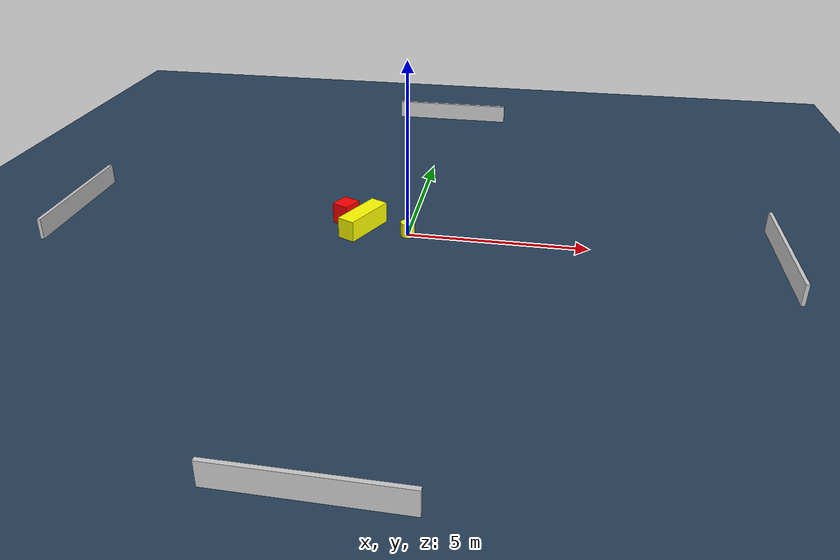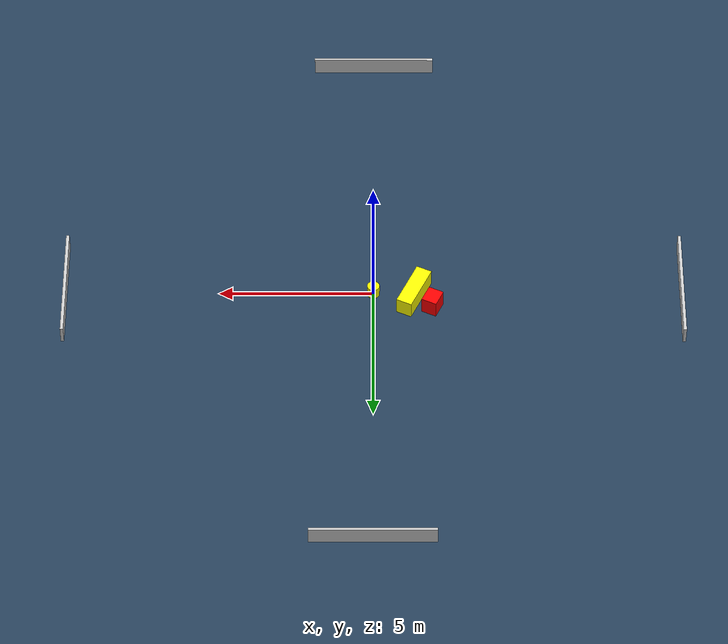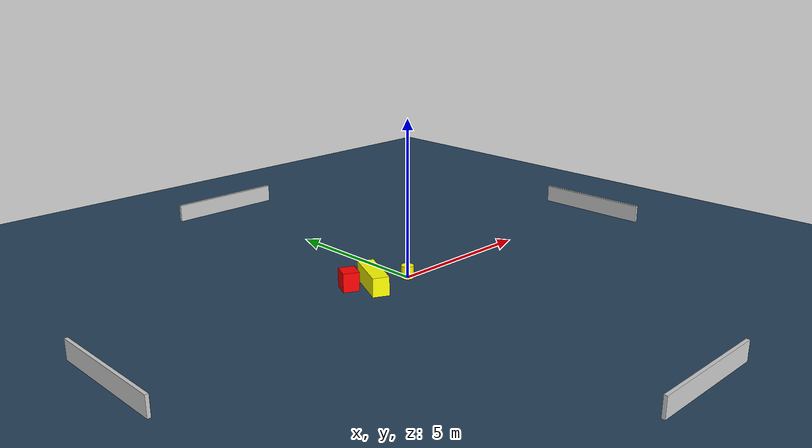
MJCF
<?xml version="1.0" ?>
<mujoco model="generated_environment">
  <option timestep="0.01" integrator="RK4" cone="elliptic"/>
  <default>
    <geom density="1"/>
  </default>
  <asset>
    <texture builtin="gradient" height="3072" name="skybox" rgb1="0.3 0.5 0.7" rgb2="0 0 0" type="skybox" width="512"/>
    <texture builtin="checker" height="300" name="groundplane" rgb1="0.2 0.3 0.4" rgb2="0.1 0.2 0.3" type="2d" width="300"/>
    <material name="groundplane" reflectance="0.2" texrepeat="5 5" texture="groundplane"/>
  </asset>
  <worldbody>
    <light dir="0 0 -1" directional="true" pos="0 0 1.5"/>
    <geom condim="3" friction="0.5 0.005 0.001" material="groundplane" name="floor" pos="0 0 0" size="0 0 0.05" type="plane"/>
    <body name="walls">
      <geom name="wall_1" condim="4" pos="-10.0 0.0 0.3" rgba="0.800000011920929 0.800000011920929 0.800000011920929 1.0" size="0.05 2.0 0.3" type="box"/>
      <geom name="wall_2" condim="4" pos="10.0 0.0 0.3" rgba="0.800000011920929 0.800000011920929 0.800000011920929 1.0" size="0.05 2.0 0.3" type="box"/>
      <geom name="wall_3" condim="4" pos="0.0 -10.0 0.3" rgba="0.800000011920929 0.800000011920929 0.800000011920929 1.0" size="2.0 0.05 0.3" type="box"/>
      <geom name="wall_4" condim="4" pos="0.0 10.0 0.3" rgba="0.800000011920929 0.800000011920929 0.800000011920929 1.0" size="2.0 0.05 0.3" type="box"/>
    </body>
    <body name="robot">
      <joint name="joint_x" type="slide" pos="0 0 0" axis="1 0 0"/>
      <joint name="joint_y" type="slide" pos="0 0 0" axis="0 1 0"/>
      <geom name="robot" type="cylinder" pos="0.0 0.0 0.2" size="0.2 0.2 0.0" mass="5.0" friction="1.0 0.005 0.0001" condim="4" rgba="1.0 1.0 0.0 1.0"/>
    </body>
    <body name="obstacle_1_movable">
      <geom name="obstacle_1_movable" condim="4" pos="-1.317857799470756 0.1466174885416747 0.3" euler="0 0 244.90583451765556" friction="0.0 0.005 0.001" rgba="1.0 1.0 0.0 1.0" size="0.7843493344228425 0.26053461076902773 0.3" type="box" mass="0.1"/>
      <joint type="free"/>
    </body>
    <body name="obstacle_2_static">
      <geom name="obstacle_2_static" condim="4" pos="-1.9116404734093468 0.5792226451448667 0.3" euler="0 0 154.63353145046065" friction="0.0 0.005 0.001" rgba="1.0 0.0 0.0 1.0" size="0.25501350954874635 0.2873505719707701 0.3" type="box"/>
    </body>
  </worldbody>
  <actuator>
    <motor name="actuator_x" joint="joint_x" gear="1" ctrlrange="-1 1"/>
    <motor name="actuator_y" joint="joint_y" gear="1" ctrlrange="-1 1"/>
  </actuator>
</mujoco>
